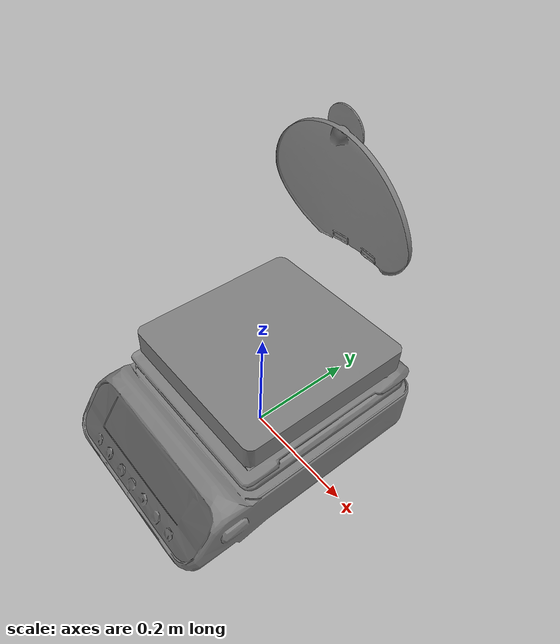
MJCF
<mujoco model="CoaterMSC150T">
  <compiler angle="radian" meshdir="../../assets"/>
  <option gravity="0 0 -9.81"/>

  <asset>
    <mesh
      name="coater_msc150t_body_mesh"
      file="CoaterMSC150T/body.obj"
      scale="0.3 0.3 0.3"/>

    <mesh
      name="coater_msc150t_lid_mesh"
      file="CoaterMSC150T/lid.obj"
      scale="0.3 0.3 0.3"/>
  </asset>

  <worldbody>
    <body name="coater_msc150t" quat="0.7071 0.7071 0 0">

      <!-- body visual -->
      <geom
        name="coater_msc150t_body_visual"
        type="mesh"
        mesh="coater_msc150t_body_mesh"
        contype="0"
        conaffinity="0"/>

      <!-- body collision -->
      <geom
        name="coater_msc150t_body_collision"
        type="mesh"
        mesh="coater_msc150t_body_mesh"
        rgba="0.8 0.8 0.8 1"
        contype="1"
        conaffinity="1"
        friction="1.0 0.3 0.001"/>

      <!-- lid -->
      <body name="coater_msc150t_lid" pos="0 0 0" quat="1 0 0 0">
        <joint
          name="coater_msc150t_lid_hinge"
          type="hinge"
          pos="0 0.3 -0.185"
          axis="1 0 0"
          range="-0.785 1.2"
          limited="true"
          damping="0.2"/>

        <!-- lid visual -->
        <geom
          name="coater_msc150t_lid_visual"
          type="mesh"
          mesh="coater_msc150t_lid_mesh"
          contype="0"
          conaffinity="0"/>

        <!-- lid collision：先关掉，避免刚开始就卡死 -->
        <geom
          name="coater_msc150t_lid_collision"
          type="mesh"
          mesh="coater_msc150t_lid_mesh"
          contype="0"
          conaffinity="0"/>
      </body>

    </body>
  </worldbody>

  <actuator>
    <position
      name="coater_msc150t_lid_ctrl"
      joint="coater_msc150t_lid_hinge"
      kp="20"
      ctrlrange="0 1.57"
      ctrllimited="true"/>
  </actuator>
</mujoco>
